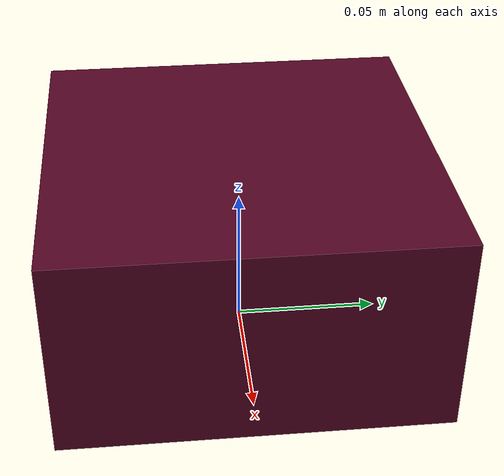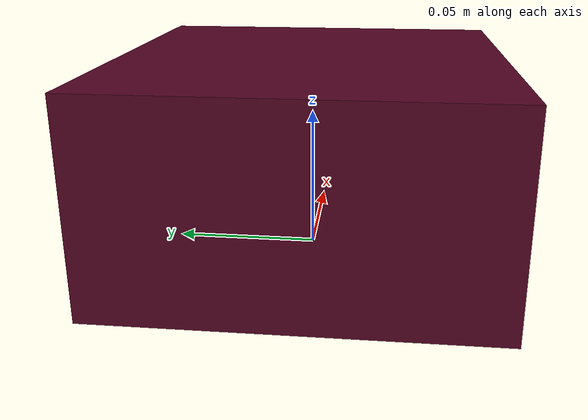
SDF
<?xml version="1.0"?>
<sdf version="1.7">
  <model name="foam_brick">
    <link name="base_link">
      <inertial>
        <pose>0 0 0.035 0 0 0 </pose>
        <mass>0.100</mass>
        <inertia>
          <ixx>1.17e-4</ixx>
          <ixy>0</ixy>
          <ixz>0</ixz>
          <iyy>1.9e-4</iyy>
          <iyz>0</iyz>
          <izz>1.9e-4</izz>
        </inertia>
      </inertial>
      <visual name="base_link">
        <pose>0 0 0.035 0 0 0</pose>
        <geometry>
          <box>
            <size>0.13 0.13 0.07</size>
          </box>
        </geometry>
        <material>
          <diffuse>0.31 0.01 0.13 1.0</diffuse>
        </material>
      </visual>
      <collision name="box_collision">
        <pose>0 0 0.035 0 0 0</pose>
        <geometry>
          <box>
            <size>0.13 0.13 0.07</size>
          </box>
        </geometry>
      </collision>
      <collision name="point_collision1">
        <pose>0.065 0.065 0 0 0 0</pose>
        <geometry>
          <sphere>
            <radius>1e-7</radius>
          </sphere>
        </geometry>
      </collision>
      <collision name="point_collision2">
        <pose>0.065 -0.065 0 0 0 0</pose>
        <geometry>
          <sphere>
            <radius>1e-7</radius>
          </sphere>
        </geometry>
      </collision>
      <collision name="point_collision3">
        <pose>-0.065 0.025 0 0 0 0</pose>
        <geometry>
          <sphere>
            <radius>1e-7</radius>
          </sphere>
        </geometry>
      </collision>
      <collision name="point_collision4">
        <pose>-0.065 -0.065 0 0 0 0</pose>
        <geometry>
          <sphere>
            <radius>1e-7</radius>
          </sphere>
        </geometry>
      </collision>
      <collision name="point_collision5">
        <pose>0.065 0.065 0.07 0 0 0</pose>
        <geometry>
          <sphere>
            <radius>1e-7</radius>
          </sphere>
        </geometry>
      </collision>
      <collision name="point_collision6">
        <pose>0.065 -0.065 0.07 0 0 0</pose>
        <geometry>
          <sphere>
            <radius>1e-7</radius>
          </sphere>
        </geometry>
      </collision>
      <collision name="point_collision7">
        <pose>-0.065 0.065 0.07 0 0 0</pose>
        <geometry>
          <sphere>
            <radius>1e-7</radius>
          </sphere>
        </geometry>
      </collision>
      <collision name="point_collision8">
        <pose>-0.065 -0.065 0.07 0 0 0</pose>
        <geometry>
          <sphere>
            <radius>1e-7</radius>
          </sphere>
        </geometry>
      </collision>
    </link>
  </model>
</sdf>
